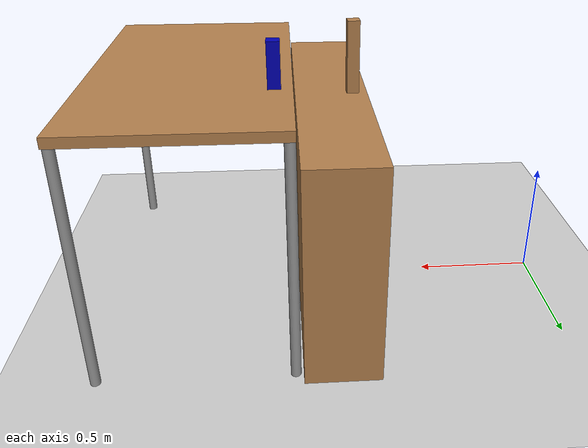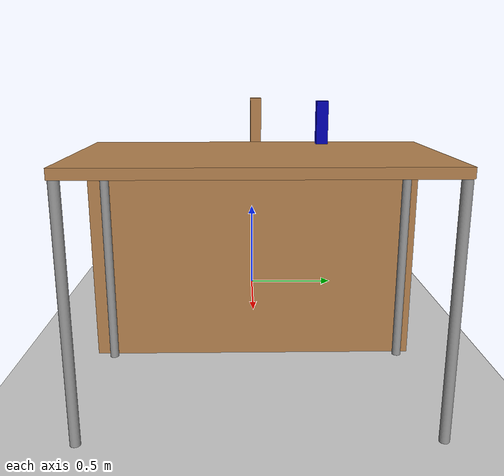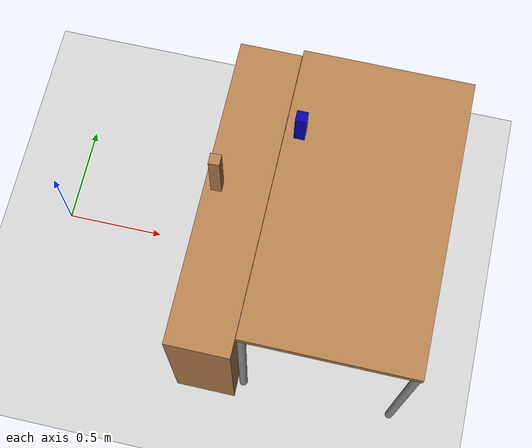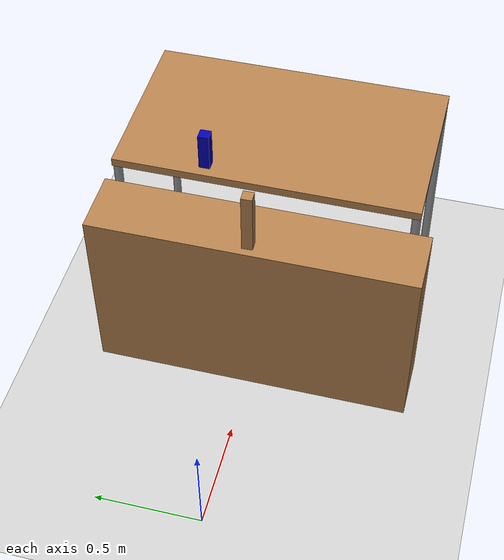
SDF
<sdf version="1.6">
 <world name="default">
  <light name="sun" type="directional">
   <pose>0 0 10 0 -0 0</pose>
   <diffuse>0.8 0.8 0.8 1</diffuse>
   <specular>0.1 0.1 0.1 1</specular>
   <attenuation>
    <range>1000</range>
    <constant>0.9</constant>
    <linear>0.01</linear>
    <quadratic>0.001</quadratic>
   </attenuation>
   <direction>-0.5 0.5 -1</direction>
  </light>
  <model name="ground_plane">
   <static>1</static>
   <link name="link">
    <collision name="collision">
     <geometry><plane><normal>0 0 1</normal><size>100 100</size></plane></geometry>
     <surface><friction><ode><mu>100</mu><mu2>50</mu2></ode></friction></surface>
    </collision>
    <visual name="visual">
     <cast_shadows>0</cast_shadows>
     <geometry><plane><normal>0 0 1</normal><size>100 100</size></plane></geometry>
     <material>
      <script><uri>file://media/materials/scripts/gazebo.material</uri><name>Gazebo/Grey</name></script>
     </material>
    </visual>
   </link>
  </model>
  <gravity>0 0 -9.8</gravity>
  <magnetic_field>6e-06 2.3e-05 -4.2e-05</magnetic_field>
  <atmosphere type="adiabatic"/>
  <physics name="default_physics" default="0" type="ode">
   <max_step_size>0.001</max_step_size>
   <real_time_factor>1</real_time_factor>
   <real_time_update_rate>1000</real_time_update_rate>
  </physics>
  <scene><ambient>0.4 0.4 0.4 1</ambient><background>0.7 0.7 0.7 1</background><shadows>1</shadows></scene>
  <spherical_coordinates>
   <surface_model>EARTH_WGS84</surface_model>
   <latitude_deg>0</latitude_deg>
   <longitude_deg>0</longitude_deg>
   <elevation>0</elevation>
   <heading_deg>0</heading_deg>
  </spherical_coordinates>
  <model name="box5_4">
   <link name="link">
    <inertial>
     <mass>5</mass>
     <inertia><ixx>0.836667</ixx><ixy>0</ixy><ixz>0</ixz><iyy>0.83</iyy><iyz>0</iyz><izz>2.58</izz></inertia>
    </inertial>
    <visual name="visual">
     <geometry><box><size>0.05 0.05 0.3</size></box></geometry>
     <material>
      <script><name>Gazebo/Wood</name><uri>file://media/materials/scripts/gazebo.material</uri></script>
      <ambient>0.3 0.3 0.3 1</ambient>
      <diffuse>0.7 0.7 0.7 1</diffuse>
      <specular>0.01 0.01 0.01 1</specular>
      <emissive>0.7 0.5 0 1</emissive>
      <shader type="vertex"><normal_map>__default__</normal_map></shader>
     </material>
    </visual>
    <collision name="collision">
     <geometry><box><size>0.05 0.05 0.3</size></box></geometry>
     <surface>
      <friction>
       <ode><mu>1</mu><mu2>1</mu2><fdir1>0 0 0</fdir1><slip1>0</slip1><slip2>0</slip2></ode>
       <torsional>
        <coefficient>1</coefficient>
        <patch_radius>0</patch_radius>
        <surface_radius>0</surface_radius>
        <use_patch_radius>1</use_patch_radius>
        <ode><slip>0</slip></ode>
       </torsional>
      </friction>
      <bounce><restitution_coefficient>0</restitution_coefficient><threshold>1e+06</threshold></bounce>
      <contact>
       <collide_without_contact>0</collide_without_contact>
       <collide_without_contact_bitmask>1</collide_without_contact_bitmask>
       <collide_bitmask>1</collide_bitmask>
       <ode>
        <soft_cfm>0</soft_cfm>
        <soft_erp>0.2</soft_erp>
        <kp>1e+13</kp>
        <kd>1</kd>
        <max_vel>0.01</max_vel>
        <min_depth>0</min_depth>
       </ode>
       <bullet>
        <split_impulse>1</split_impulse>
        <split_impulse_penetration_threshold>-0.01</split_impulse_penetration_threshold>
        <soft_cfm>0</soft_cfm>
        <soft_erp>0.2</soft_erp>
        <kp>1e+13</kp>
        <kd>1</kd>
       </bullet>
      </contact>
     </surface>
    </collision>
   </link>
   <static>0</static>
   <pose>0.850206 0.00222 1.04999 4.8e-05 -5.3e-05 0.026725</pose>
  </model>
  <model name="table">
   <static>0</static>
   <link name="link">
    <collision name="surface">
     <pose>0 0 1 0 -0 0</pose>
     <geometry><box><size>1.5 0.8 0.03</size></box></geometry>
     <surface><friction><ode><mu>0.6</mu><mu2>0.6</mu2></ode></friction></surface>
    </collision>
    <visual name="visual1">
     <pose>0 0 1 0 -0 0</pose>
     <geometry><box><size>1.4 0.8 0.04</size></box></geometry>
     <material>
      <script><uri>file://media/materials/scripts/gazebo.material</uri><name>Gazebo/Wood</name></script>
     </material>
    </visual>
    <collision name="front_left_leg">
     <pose>0.68 0.38 0.5 0 -0 0</pose>
     <geometry><cylinder><radius>0.02</radius><length>1</length></cylinder></geometry>
    </collision>
    <visual name="front_left_leg">
     <pose>0.68 0.38 0.5 0 -0 0</pose>
     <geometry><cylinder><radius>0.02</radius><length>1</length></cylinder></geometry>
     <material>
      <script><uri>file://media/materials/scripts/gazebo.material</uri><name>Gazebo/Grey</name></script>
     </material>
    </visual>
    <collision name="front_right_leg">
     <pose>0.68 -0.38 0.5 0 -0 0</pose>
     <geometry><cylinder><radius>0.02</radius><length>1</length></cylinder></geometry>
    </collision>
    <visual name="front_right_leg">
     <pose>0.68 -0.38 0.5 0 -0 0</pose>
     <geometry><cylinder><radius>0.02</radius><length>1</length></cylinder></geometry>
     <material>
      <script><uri>file://media/materials/scripts/gazebo.material</uri><name>Gazebo/Grey</name></script>
     </material>
    </visual>
    <collision name="back_right_leg">
     <pose>-0.68 -0.38 0.5 0 -0 0</pose>
     <geometry><cylinder><radius>0.02</radius><length>1</length></cylinder></geometry>
    </collision>
    <visual name="back_right_leg">
     <pose>-0.68 -0.38 0.5 0 -0 0</pose>
     <geometry><cylinder><radius>0.02</radius><length>1</length></cylinder></geometry>
     <material>
      <script><uri>file://media/materials/scripts/gazebo.material</uri><name>Gazebo/Grey</name></script>
     </material>
    </visual>
    <collision name="back_left_leg">
     <pose>-0.68 0.38 0.5 0 -0 0</pose>
     <geometry><cylinder><radius>0.02</radius><length>1</length></cylinder></geometry>
    </collision>
    <visual name="back_left_leg">
     <pose>-0.68 0.38 0.5 0 -0 0</pose>
     <geometry><cylinder><radius>0.02</radius><length>1</length></cylinder></geometry>
     <material>
      <script><uri>file://media/materials/scripts/gazebo.material</uri><name>Gazebo/Grey</name></script>
     </material>
    </visual>
    <inertial>
     <inertia><ixx>1</ixx><ixy>0</ixy><ixz>0</ixz><iyy>1</iyy><iyz>0</iyz><izz>1</izz></inertia>
     <mass>1</mass>
    </inertial>
   </link>
   <pose>1.50005 -7.1e-05 -2e-06 0 -0 1.57057</pose>
  </model>
  <model name="unit_box_0">
   <link name="link">
    <inertial>
     <mass>1</mass>
     <inertia>
      <ixx>0.166667</ixx>
      <ixy>0</ixy>
      <ixz>0</ixz>
      <iyy>0.166667</iyy>
      <iyz>0</iyz>
      <izz>0.166667</izz>
     </inertia>
    </inertial>
    <visual name="visual">
     <geometry><box><size>0.3 1.5 0.9</size></box></geometry>
     <material>
      <script><name>Gazebo/Wood</name><uri>file://media/materials/scripts/gazebo.material</uri></script>
      <ambient>0.3 0.3 0.3 1</ambient>
      <diffuse>0.7 0.7 0.7 1</diffuse>
      <specular>0.01 0.01 0.01 1</specular>
      <emissive>0 0 0 1</emissive>
      <shader type="vertex"><normal_map>__default__</normal_map></shader>
     </material>
    </visual>
    <collision name="collision">
     <geometry><box><size>0.3 1.5 0.9</size></box></geometry>
     <surface>
      <friction>
       <ode><mu>1</mu><mu2>1</mu2><fdir1>0 0 0</fdir1><slip1>0</slip1><slip2>0</slip2></ode>
       <torsional>
        <coefficient>1</coefficient>
        <patch_radius>0</patch_radius>
        <surface_radius>0</surface_radius>
        <use_patch_radius>1</use_patch_radius>
        <ode><slip>0</slip></ode>
       </torsional>
      </friction>
      <bounce><restitution_coefficient>0</restitution_coefficient><threshold>1e+06</threshold></bounce>
      <contact>
       <collide_without_contact>0</collide_without_contact>
       <collide_without_contact_bitmask>1</collide_without_contact_bitmask>
       <collide_bitmask>1</collide_bitmask>
       <ode>
        <soft_cfm>0</soft_cfm>
        <soft_erp>0.2</soft_erp>
        <kp>1e+13</kp>
        <kd>1</kd>
        <max_vel>0.01</max_vel>
        <min_depth>0</min_depth>
       </ode>
       <bullet>
        <split_impulse>1</split_impulse>
        <split_impulse_penetration_threshold>-0.01</split_impulse_penetration_threshold>
        <soft_cfm>0</soft_cfm>
        <soft_erp>0.2</soft_erp>
        <kp>1e+13</kp>
        <kd>1</kd>
       </bullet>
      </contact>
     </surface>
    </collision>
   </link>
   <static>0</static>
   <pose>0.939998 -0.012557 0.449993 1.2e-05 -5.2e-05 3.3e-05</pose>
  </model>
  <model name="box2">
   <link name="link">
    <inertial>
     <mass>0.1</mass>
     <inertia>
      <ixx>0.0166667</ixx>
      <ixy>0</ixy>
      <ixz>0</ixz>
      <iyy>0.0166667</iyy>
      <iyz>0</iyz>
      <izz>0.0166667</izz>
     </inertia>
    </inertial>
    <visual name="visual">
     <geometry><box><size>0.05 0.05 0.2</size></box></geometry>
     <material>
      <script><name>Gazebo/Grey</name><uri>file://media/materials/scripts/gazebo.material</uri></script>
      <ambient>0.3 0.3 0.9 1</ambient>
      <diffuse>0 0 0.7 1</diffuse>
      <specular>0.01 0.01 0.8 1</specular>
      <emissive>0 0 0.5 1</emissive>
      <shader type="vertex"><normal_map>__default__</normal_map></shader>
     </material>
    </visual>
    <collision name="collision">
     <geometry><box><size>0.05 0.05 0.2</size></box></geometry>
     <surface>
      <friction>
       <ode><mu>1</mu><mu2>1</mu2><fdir1>0 0 0</fdir1><slip1>0</slip1><slip2>0</slip2></ode>
       <torsional>
        <coefficient>1</coefficient>
        <patch_radius>0</patch_radius>
        <surface_radius>0</surface_radius>
        <use_patch_radius>1</use_patch_radius>
        <ode><slip>0</slip></ode>
       </torsional>
      </friction>
      <bounce><restitution_coefficient>0</restitution_coefficient><threshold>1e+06</threshold></bounce>
      <contact>
       <collide_without_contact>0</collide_without_contact>
       <collide_without_contact_bitmask>1</collide_without_contact_bitmask>
       <collide_bitmask>1</collide_bitmask>
       <ode>
        <soft_cfm>0</soft_cfm>
        <soft_erp>0.2</soft_erp>
        <kp>1e+13</kp>
        <kd>1</kd>
        <max_vel>0.01</max_vel>
        <min_depth>0</min_depth>
       </ode>
       <bullet>
        <split_impulse>1</split_impulse>
        <split_impulse_penetration_threshold>-0.01</split_impulse_penetration_threshold>
        <soft_cfm>0</soft_cfm>
        <soft_erp>0.2</soft_erp>
        <kp>1e+13</kp>
        <kd>1</kd>
       </bullet>
      </contact>
     </surface>
    </collision>
   </link>
   <static>0</static>
   <pose>1.17 0.28 1.1 0 -0 0</pose>
  </model>
 </world>
</sdf>
